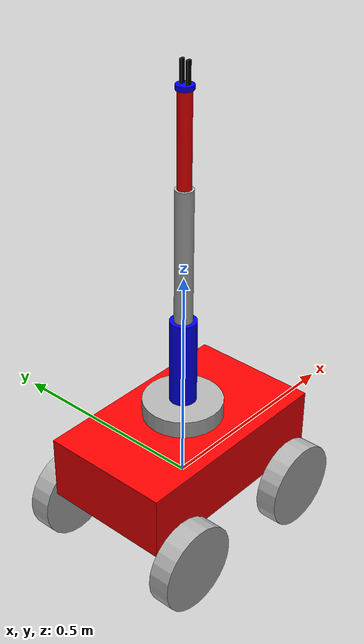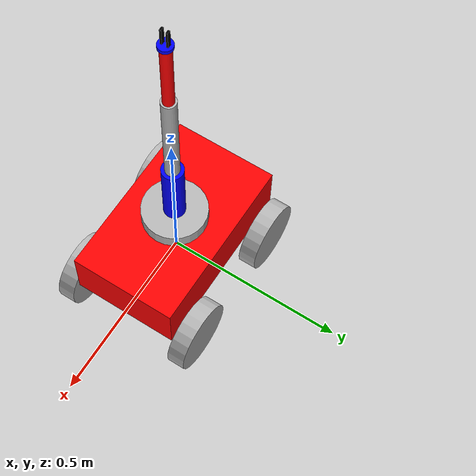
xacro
<?xml version="1.0"?>
<robot name ="my_robot3" xmlns:xacro="http://www.ros.org/wiki/xacro">
   <link name="base_link">

      <visual>
         <geometry>
            <box size ="0.5 0.3 0.15"/>
         </geometry>
         <origin xyz=" 0 0 0.075" rpy="0 0 0"/>
         <material name="red">
         <color rgba="1 0 0 1"/>
         </material>
      </visual>

      <collision>
         <geometry>
            <box size ="0.5 0.3 0.15"/>
         </geometry>
         <origin xyz= "0 0 0.075" rpy="0 0 0"/>
      </collision>

      <inertial>
         <mass value="2.0"/>
         <origin xyz="0 0 0" rpy="0 0 0"/>
         <inertia ixx= "0.01" ixy="0" ixz="0" iyy="0.01" iyz="0" izz="0.01" />
      </inertial>
   </link>

   <xacro:macro name ="wheel_link" params="prefix">

      <link name ="${prefix}_wheel">
         <visual>
            <geometry>
               <cylinder radius="0.1" length ="0.05"/>
            </geometry>
            <origin xyz="0 0 0" rpy="1.57 0 0"/>
            <material name ="grey">
               <color rgba="0.7 0.7 0.7 1 "/>
            </material>
         </visual>

         <collision>
            <geometry>
               <cylinder radius="0.1" length="0.05"/>
            </geometry>
            <origin xyz="0 0 0" rpy="1.57 0 0"/>
         </collision>

         <inertial>
            <mass value ="0.5"/>
            <origin xyz="0 0 0" rpy="0 0 0"/>
            <inertia ixx="0.05" ixy="0" ixz="0"
                     iyy="0.05" iyz="0" izz="0.05"/>
         </inertial>
     </link>

   </xacro:macro>

   <xacro:wheel_link prefix ="right_front_wheel"/>
   <xacro:wheel_link prefix="left_front_wheel"/>
   <xacro:wheel_link prefix="right_rear_wheel"/>
   <xacro:wheel_link prefix="left_rear_wheel"/>

   <link name ="link1">
      <visual>
         <geometry>
            <cylinder radius ="0.09" length="0.04"/>
         </geometry>
         <origin xyz="0 0 0.02" rpy="0 0 0"/>
         <material name="grey">
            <color rgba="0.7 0.7 0.7 1"/>
         </material>
      </visual>

      <collision>
         <geometry>
            <cylinder radius="0.09" length="0.04"/>
         </geometry>
         <origin xyz="0 0 0.02" rpy=" 0 0 0"/>
      </collision>

      <inertial>
         <mass value="1.5"/>
         <origin xyz= "0 0 0.02" rpy="0 0 0"/>
         <inertia ixx="0.01" ixy="0" ixz="0" iyy="0.01" iyz="0" izz="0.01"/>
      </inertial>
   </link>

   <link name ="link2">
      <visual>
         <geometry>
            <cylinder radius="0.03" length="0.2"/>
         </geometry>
         <origin xyz="0 0 0.1" rpy="0 0 0"/>
         <material name="blue">
           <color rgba="0 0 1 1"/>
         </material>
      </visual>

      <collision>
         <geometry>
            <cylinder radius ="0.03" lenght="0.2"/>
         </geometry>
         <origin xyz="0 0 0.1" rpy="0 0 0"/>
      </collision>

      <inertial>
        <mass value="1.2"/>
        <origin xyz="0 0 0.1" rpy="0 0 0"/>
        <inertia ixx="0.01" ixy="0.01" ixz="0.01" iyy="0.01" iyz="0.01" izz="0.01"/>
      </inertial>
   </link>

   <link name ="link3">
      <visual>
         <geometry>
            <cylinder radius="0.02" length="0.3"/>
         </geometry>
         <origin xyz="0 0 0.15" rpy="0 0 0"/>
         <material name ="grey">
            <color rgba="0.7 0.7 0.7 1"/>
         </material>
      </visual>

      <collision>
         <geometry>
            <cylinder radius="0.02" lenght="0.3"/>
         </geometry>
         <origin xyz="0 0 0.15" rpy="0 0 0"/>
      </collision>

      <inertial>
         <mass value="1"/>
         <origin xyz="0 0 0.15" rpy="0 0 0"/>
         <inertia ixx="0.01" ixy="0" ixz="0" iyy="0.01" iyz="0" izz="0.01"/>
      </inertial>
   </link>

   <link name="link4">
       <visual>
           <geometry>
               <cylinder radius="0.015" length="0.2"/>
           </geometry>
           <origin xyz="0 0 0.1" rpy="0 0 0"/>
           <material name="red">
               <color rgba="1 0 0 1 "/>
           </material>
       </visual>

       <collision>
           <geometry>
              <cylinder radius="0.015" length="0.2"/>
           </geometry>
           <origin xyz="0 0 0.1" rpy="0 0 0"/>
       </collision>

       <inertial>
          <mass value="0.8"/>
          <origin xyz=" 0 0 0.1" rpy="0 0 0"/>
          <inertia ixx="0.01" ixy="0" ixz="0" iyy="0.01" iyz="0" izz="0"/>
       </inertial>
   </link>

   <link name="link5">
     <visual>
         <geometry>
            <cylinder radius="0.019" length="0.01"/>
         </geometry>
         <origin xyz="0 0 0.005" rpy="0 0 0"/>
         <material name="blue">
            <color rgba="0 0 1 1"/>
         </material>
     </visual>

     <collision>
        <geometry>
            <cylinder radius="0.019" length="0.02"/>
        </geometry>
        <origin xyz="0 0 0.005" rpy="0 0 0"/>
     </collision>

     <inertial>
        <mass value ="0.5"/>
        <origin xyz="0 0 0.1" rpy="0 0 0"/>
        <inertia ixx="0.01" ixy="0" ixz="0" iyy="0.01" iyz="0" izz="0.01"/>
     </inertial>
   </link>

   <link name ="gripper1">
      <visual>
         <geometry>
            <box size="0.01 0.005 0.09"/>
         </geometry>
         <origin xyz="0 0 0.006" rpy="0 0 0"/>
         <material name="black">
            <color rgba="0 0 0 1"/>
         </material>
      </visual>

      <collision>
         <geometry>
            <box size="0.01 0.005 0.09"/>
         </geometry>
         <origin xyz="0 0 0.006" rpy="0 0 0"/>
      </collision>

      <inertial>
         <mass value="0.3"/>
         <origin xyz="0 0 0.006" rpy="0 0 0"/>
         <inertia ixx="0.01" ixy="0" ixz="0" iyy="0.01" iyz="0" izz="0.01"/>
      </inertial>
   </link>

   <link name ="gripper2">
      <visual>
         <geometry>
            <box size="0.01 0.005 0.09"/>
         </geometry>
         <origin xyz="0 0 0.006" rpy="0 0 0"/>
         <material name="black">
            <color rgba="0 0 0 1"/>
         </material>
      </visual>

      <collision>
         <geometry>
            <box size="0.01 0.005 0.09"/>
         </geometry>
         <origin xyz="0 0 0.006" rpy="0 0 0"/>
      </collision>

      <inertial>
         <mass value="0.3"/>
         <origin xyz="0 0 0.006" rpy="0 0 0"/>
         <inertia ixx="0.01" ixy="0" ixz="0" iyy="0.01" iyz="0" izz="0.01"/>
      </inertial>
   </link>

   <joint name ="base_link_right_front_wheel" type="continuous">
      <parent link="base_link"/>
      <child link="right_front_wheel_wheel"/>
      <origin xyz="-0.18 0.18  -0.05" rpy="0 0 0"/>
      <axis xyz="0 1 0"/>
      <limit effort="10" velocity="0.05"/>
   </joint>

   <joint name="base_link_left_front_wheel" type="continuous">
      <parent link="base_link"/>
      <child link="left_front_wheel_wheel"/>
      <origin xyz="-0.18 -0.18 -0.05" rpy="0 0 0"/>
      <axis xyz="0 1 0"/>
      <limit effort="10" velocity="0.05"/>
   </joint>

   <joint name="base_link_right_rear_wheel" type="continuous">
      <parent link="base_link"/>
      <child link="right_rear_wheel_wheel"/>
      <origin xyz="0.18 0.18 -0.05" rpy="0 0 0"/>
      <axis xyz="0 1 0"/>
      <limit effort="10" velocity="0.05"/>
   </joint>

   <joint name="base_link_left_rear_wheel" type="continuous">
      <parent link="base_link"/>
      <child link="left_rear_wheel_wheel"/>
      <origin xyz="0.18 -0.18 -0.05" rpy="0 0 0"/>
      <axis xyz="0 1 0"/>
      <limit effort="10" velocity="0.05"/>
   </joint>

   <joint name ="base_link_link1" type="continuous">
      <parent link="base_link"/>
      <child link="link1"/>
      <origin xyz="0 0 0.16" rpy="0 0 0"/>
      <axis xyz="0 0 1"/>
      <limit lower="3.14"
             upper="-3.14"
             effort="10"
             velocity="0.04"/>
   </joint>

   <joint name="link1_link2" type="revolute">
      <parent link="link1"/>
      <child link="link2"/>
      <origin xyz="0 0 0.04" rpy="0 0 0"/>
      <axis xyz="0 0 1"/>
      <limit lower="1.57"
             upper="-1.57"
             effort="8"
             velocity="0.03"/>
   </joint>

   <joint name="link2_link3"  type="revolute">
      <parent link="link2"/>
      <child link="link3"/>
      <origin xyz="0 0 0.2" rpy="0 0 0"/>
      <axis xyz="1 0 0"/>
      <limit lower="2"
             upper="-2"
             effort="5"
             velocity="0.02"/>
   </joint>

   <joint name="link3_link4"  type ="revolute">
      <parent link="link3"/>
      <child link="link4"/>
      <origin xyz="0 0 0.3" rpy="0 0 0"/>
      <axis xyz="0 1 0"/>
      <limit lower="1.57"
             upper="-1.57"
             effort="4"
             velocity="0.015"/>
   </joint>

   <joint name="link4_link5" type="continuous">
      <parent link="link4"/>
      <child link="link5"/>
      <origin xyz="0 0 0.2" rpy="0 0 0"/>
      <axis xyz="0 0 1"/>
      <limit lower="1.57"
             upper="-1.57"
             effort="3"
             velocity="0.015"/>
   </joint>

   <joint name="link5_gripper1" type="prismatic">
      <parent link="link5"/>
      <child link="gripper1"/>
      <origin xyz="0 0.008 0.006" rpy="0 0 0"/>
      <axis xyz="0 1 0"/>
      <limit lower="0"
             upper="0.003"
             effort="2"
             velocity="0.015"/>
   </joint>

   <joint name="link5_gripper2" type="prismatic">
      <parent link="link5"/>
      <child link="gripper2"/>
      <origin xyz="0 -0.008 0.006" rpy="0 0 0"/>
      <axis xyz="0 -1 0"/>
      <limit lower="0.0"
             upper="0.003"
             effort="2"
             velocity="0.015"/>
   </joint>

</robot>
